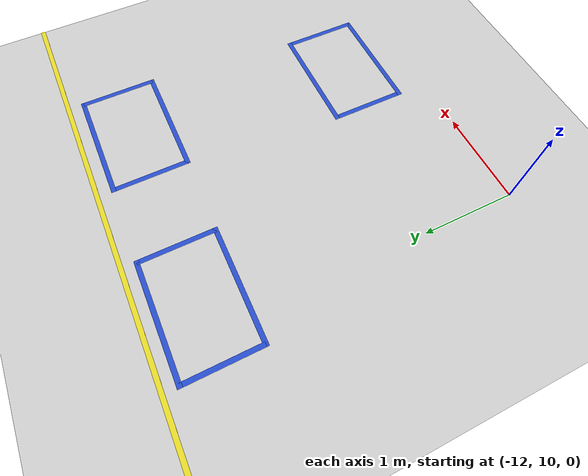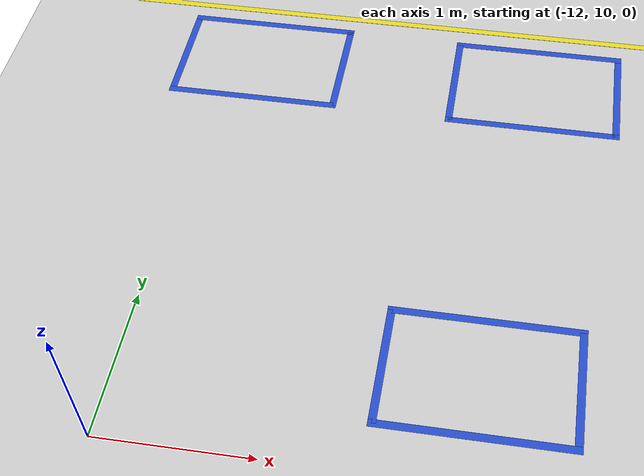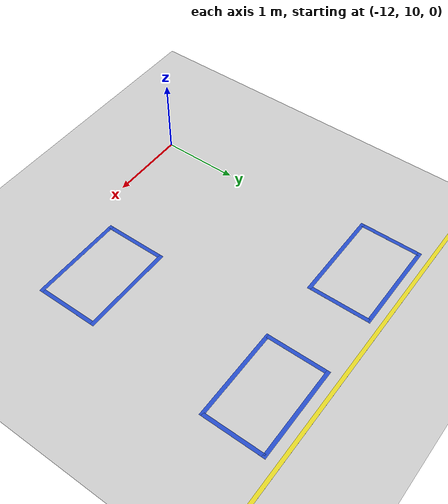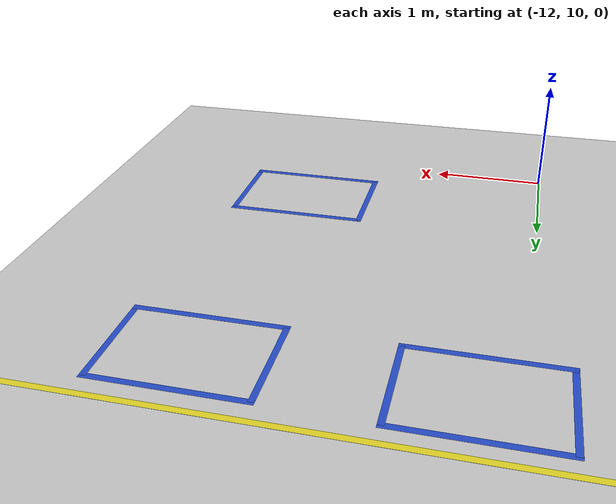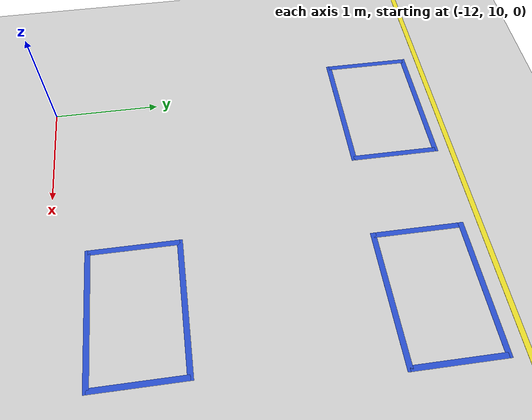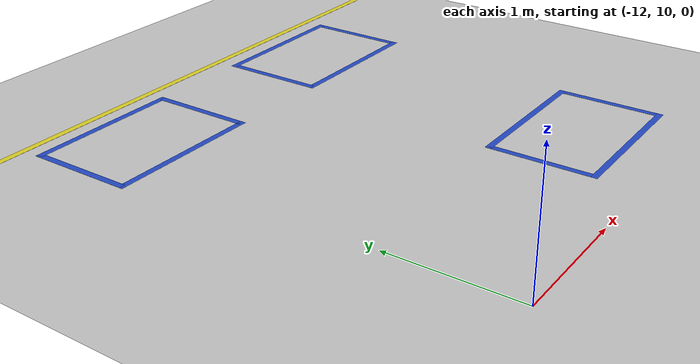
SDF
<sdf version="1.6">
 <world name="default">
  <model name="ground_plane">
   <static>1</static>
   <link name="link">
    <collision name="collision">
     <geometry><plane><normal>0 0 1</normal><size>100 100</size></plane></geometry>
     <surface><friction><ode><mu>100</mu><mu2>50</mu2></ode></friction></surface>
    </collision>
    <visual name="visual">
     <cast_shadows>0</cast_shadows>
     <geometry><plane><normal>0 0 1</normal><size>100 100</size></plane></geometry>
     <material>
      <script><uri>file://media/materials/scripts/gazebo.material</uri><name>Gazebo/Grey</name></script>
     </material>
    </visual>
   </link>
  </model>
  <model name="line20m_0">
   <link name="link_0">
    <inertial>
     <mass>1</mass>
     <inertia>
      <ixx>0.166667</ixx>
      <ixy>0</ixy>
      <ixz>0</ixz>
      <iyy>0.166667</iyy>
      <iyz>0</iyz>
      <izz>0.166667</izz>
     </inertia>
    </inertial>
    <visual name="visual">
     <geometry><box><size>0.05 20 0.001</size></box></geometry>
     <material>
      <lighting>1</lighting>
      <script><uri>file://media/materials/scripts/gazebo.material</uri><name>Gazebo/Yellow</name></script>
     </material>
    </visual>
    <collision name="collision">
     <geometry><box><size>0.05 20 0.001</size></box></geometry>
     <surface>
      <friction>
       <ode><mu>1</mu><mu2>1</mu2><fdir1>0 0 0</fdir1><slip1>0</slip1><slip2>0</slip2></ode>
       <torsional>
        <coefficient>1</coefficient>
        <patch_radius>0</patch_radius>
        <surface_radius>0</surface_radius>
        <use_patch_radius>1</use_patch_radius>
        <ode><slip>0</slip></ode>
       </torsional>
      </friction>
      <bounce><restitution_coefficient>0</restitution_coefficient><threshold>1e+06</threshold></bounce>
      <contact>
       <collide_without_contact>0</collide_without_contact>
       <collide_without_contact_bitmask>1</collide_without_contact_bitmask>
       <collide_bitmask>1</collide_bitmask>
       <ode>
        <soft_cfm>0</soft_cfm>
        <soft_erp>0.2</soft_erp>
        <kp>1e+13</kp>
        <kd>1</kd>
        <max_vel>0.01</max_vel>
        <min_depth>0</min_depth>
       </ode>
       <bullet>
        <split_impulse>1</split_impulse>
        <split_impulse_penetration_threshold>-0.01</split_impulse_penetration_threshold>
        <soft_cfm>0</soft_cfm>
        <soft_erp>0.2</soft_erp>
        <kp>1e+13</kp>
        <kd>1</kd>
       </bullet>
      </contact>
     </surface>
    </collision>
   </link>
   <static>1</static>
   <pose>-10.8441 13.7915 0 0 -0 1.5708</pose>
  </model>
  <model name="waitSpot_3">
   <link name="link_4">
    <inertial>
     <mass>1</mass>
     <inertia>
      <ixx>0.166667</ixx>
      <ixy>0</ixy>
      <ixz>0</ixz>
      <iyy>0.166667</iyy>
      <iyz>0</iyz>
      <izz>0.166667</izz>
     </inertia>
    </inertial>
    <visual name="ModelPreview_8::link_4::visual_3">
     <pose>-0.6 0 0 0 -0 0</pose>
     <geometry><box><size>0.05 0.8 0.0001</size></box></geometry>
     <material>
      <lighting>1</lighting>
      <script><uri>file://media/materials/scripts/gazebo.material</uri><name>Gazebo/Blue</name></script>
     </material>
    </visual>
    <visual name="ModelPreview_8::link_4::visual_1">
     <pose>0 -0.4 0 0 -0 0</pose>
     <geometry><box><size>1.25 0.05 0.0001</size></box></geometry>
     <material>
      <lighting>1</lighting>
      <script><uri>file://media/materials/scripts/gazebo.material</uri><name>Gazebo/Blue</name></script>
     </material>
    </visual>
    <visual name="ModelPreview_8::link_4::visual_2">
     <pose>0.6 0 0 0 -0 0</pose>
     <geometry><box><size>0.05 0.8 0.0001</size></box></geometry>
     <material>
      <lighting>1</lighting>
      <script><uri>file://media/materials/scripts/gazebo.material</uri><name>Gazebo/Blue</name></script>
     </material>
    </visual>
    <visual name="visual">
     <pose>0 0.4 0 0 -0 0</pose>
     <geometry><box><size>1.25 0.05 0.0001</size></box></geometry>
     <material>
      <lighting>1</lighting>
      <script><uri>file://media/materials/scripts/gazebo.material</uri><name>Gazebo/Blue</name></script>
     </material>
    </visual>
    <collision name="collision_2">
     <pose>0.6 0 0 0 -0 0</pose>
     <geometry><box><size>0.05 0.8 0.0001</size></box></geometry>
     <surface>
      <friction>
       <ode><mu>1</mu><mu2>1</mu2><fdir1>0 0 0</fdir1><slip1>0</slip1><slip2>0</slip2></ode>
       <torsional>
        <coefficient>1</coefficient>
        <patch_radius>0</patch_radius>
        <surface_radius>0</surface_radius>
        <use_patch_radius>1</use_patch_radius>
        <ode><slip>0</slip></ode>
       </torsional>
      </friction>
      <bounce><restitution_coefficient>0</restitution_coefficient><threshold>1e+06</threshold></bounce>
      <contact>
       <collide_without_contact>0</collide_without_contact>
       <collide_without_contact_bitmask>1</collide_without_contact_bitmask>
       <collide_bitmask>1</collide_bitmask>
       <ode>
        <soft_cfm>0</soft_cfm>
        <soft_erp>0.2</soft_erp>
        <kp>1e+13</kp>
        <kd>1</kd>
        <max_vel>0.01</max_vel>
        <min_depth>0</min_depth>
       </ode>
       <bullet>
        <split_impulse>1</split_impulse>
        <split_impulse_penetration_threshold>-0.01</split_impulse_penetration_threshold>
        <soft_cfm>0</soft_cfm>
        <soft_erp>0.2</soft_erp>
        <kp>1e+13</kp>
        <kd>1</kd>
       </bullet>
      </contact>
     </surface>
    </collision>
    <collision name="collision">
     <pose>0 0.4 0 0 -0 0</pose>
     <geometry><box><size>1.25 0.05 0.0001</size></box></geometry>
     <surface>
      <friction>
       <ode><mu>1</mu><mu2>1</mu2><fdir1>0 0 0</fdir1><slip1>0</slip1><slip2>0</slip2></ode>
       <torsional>
        <coefficient>1</coefficient>
        <patch_radius>0</patch_radius>
        <surface_radius>0</surface_radius>
        <use_patch_radius>1</use_patch_radius>
        <ode><slip>0</slip></ode>
       </torsional>
      </friction>
      <bounce><restitution_coefficient>0</restitution_coefficient><threshold>1e+06</threshold></bounce>
      <contact>
       <collide_without_contact>0</collide_without_contact>
       <collide_without_contact_bitmask>1</collide_without_contact_bitmask>
       <collide_bitmask>1</collide_bitmask>
       <ode>
        <soft_cfm>0</soft_cfm>
        <soft_erp>0.2</soft_erp>
        <kp>1e+13</kp>
        <kd>1</kd>
        <max_vel>0.01</max_vel>
        <min_depth>0</min_depth>
       </ode>
       <bullet>
        <split_impulse>1</split_impulse>
        <split_impulse_penetration_threshold>-0.01</split_impulse_penetration_threshold>
        <soft_cfm>0</soft_cfm>
        <soft_erp>0.2</soft_erp>
        <kp>1e+13</kp>
        <kd>1</kd>
       </bullet>
      </contact>
     </surface>
    </collision>
    <collision name="collision_1">
     <pose>0 -0.4 0 0 -0 0</pose>
     <geometry><box><size>1.25 0.05 0.0001</size></box></geometry>
     <surface>
      <friction>
       <ode><mu>1</mu><mu2>1</mu2><fdir1>0 0 0</fdir1><slip1>0</slip1><slip2>0</slip2></ode>
       <torsional>
        <coefficient>1</coefficient>
        <patch_radius>0</patch_radius>
        <surface_radius>0</surface_radius>
        <use_patch_radius>1</use_patch_radius>
        <ode><slip>0</slip></ode>
       </torsional>
      </friction>
      <bounce><restitution_coefficient>0</restitution_coefficient><threshold>1e+06</threshold></bounce>
      <contact>
       <collide_without_contact>0</collide_without_contact>
       <collide_without_contact_bitmask>1</collide_without_contact_bitmask>
       <collide_bitmask>1</collide_bitmask>
       <ode>
        <soft_cfm>0</soft_cfm>
        <soft_erp>0.2</soft_erp>
        <kp>1e+13</kp>
        <kd>1</kd>
        <max_vel>0.01</max_vel>
        <min_depth>0</min_depth>
       </ode>
       <bullet>
        <split_impulse>1</split_impulse>
        <split_impulse_penetration_threshold>-0.01</split_impulse_penetration_threshold>
        <soft_cfm>0</soft_cfm>
        <soft_erp>0.2</soft_erp>
        <kp>1e+13</kp>
        <kd>1</kd>
       </bullet>
      </contact>
     </surface>
    </collision>
    <collision name="collision_3">
     <pose>-0.6 0 0 0 -0 0</pose>
     <geometry><box><size>0.05 0.8 0.0001</size></box></geometry>
     <surface>
      <friction>
       <ode><mu>1</mu><mu2>1</mu2><fdir1>0 0 0</fdir1><slip1>0</slip1><slip2>0</slip2></ode>
       <torsional>
        <coefficient>1</coefficient>
        <patch_radius>0</patch_radius>
        <surface_radius>0</surface_radius>
        <use_patch_radius>1</use_patch_radius>
        <ode><slip>0</slip></ode>
       </torsional>
      </friction>
      <bounce><restitution_coefficient>0</restitution_coefficient><threshold>1e+06</threshold></bounce>
      <contact>
       <collide_without_contact>0</collide_without_contact>
       <collide_without_contact_bitmask>1</collide_without_contact_bitmask>
       <collide_bitmask>1</collide_bitmask>
       <ode>
        <soft_cfm>0</soft_cfm>
        <soft_erp>0.2</soft_erp>
        <kp>1e+13</kp>
        <kd>1</kd>
        <max_vel>0.01</max_vel>
        <min_depth>0</min_depth>
       </ode>
       <bullet>
        <split_impulse>1</split_impulse>
        <split_impulse_penetration_threshold>-0.01</split_impulse_penetration_threshold>
        <soft_cfm>0</soft_cfm>
        <soft_erp>0.2</soft_erp>
        <kp>1e+13</kp>
        <kd>1</kd>
       </bullet>
      </contact>
     </surface>
    </collision>
   </link>
   <static>1</static>
   <pose>-11.6907 13.2366 0 0 -0 0</pose>
  </model>
  <model name="waitSpot_4">
   <link name="link_4">
    <inertial>
     <mass>1</mass>
     <inertia>
      <ixx>0.166667</ixx>
      <ixy>0</ixy>
      <ixz>0</ixz>
      <iyy>0.166667</iyy>
      <iyz>0</iyz>
      <izz>0.166667</izz>
     </inertia>
    </inertial>
    <visual name="ModelPreview_8::link_4::visual_3">
     <pose>-0.6 0 0 0 -0 0</pose>
     <geometry><box><size>0.05 0.8 0.0001</size></box></geometry>
     <material>
      <lighting>1</lighting>
      <script><uri>file://media/materials/scripts/gazebo.material</uri><name>Gazebo/Blue</name></script>
     </material>
    </visual>
    <visual name="ModelPreview_8::link_4::visual_1">
     <pose>0 -0.4 0 0 -0 0</pose>
     <geometry><box><size>1.25 0.05 0.0001</size></box></geometry>
     <material>
      <lighting>1</lighting>
      <script><uri>file://media/materials/scripts/gazebo.material</uri><name>Gazebo/Blue</name></script>
     </material>
    </visual>
    <visual name="ModelPreview_8::link_4::visual_2">
     <pose>0.6 0 0 0 -0 0</pose>
     <geometry><box><size>0.05 0.8 0.0001</size></box></geometry>
     <material>
      <lighting>1</lighting>
      <script><uri>file://media/materials/scripts/gazebo.material</uri><name>Gazebo/Blue</name></script>
     </material>
    </visual>
    <visual name="visual">
     <pose>0 0.4 0 0 -0 0</pose>
     <geometry><box><size>1.25 0.05 0.0001</size></box></geometry>
     <material>
      <lighting>1</lighting>
      <script><uri>file://media/materials/scripts/gazebo.material</uri><name>Gazebo/Blue</name></script>
     </material>
    </visual>
    <collision name="collision_2">
     <pose>0.6 0 0 0 -0 0</pose>
     <geometry><box><size>0.05 0.8 0.0001</size></box></geometry>
     <surface>
      <friction>
       <ode><mu>1</mu><mu2>1</mu2><fdir1>0 0 0</fdir1><slip1>0</slip1><slip2>0</slip2></ode>
       <torsional>
        <coefficient>1</coefficient>
        <patch_radius>0</patch_radius>
        <surface_radius>0</surface_radius>
        <use_patch_radius>1</use_patch_radius>
        <ode><slip>0</slip></ode>
       </torsional>
      </friction>
      <bounce><restitution_coefficient>0</restitution_coefficient><threshold>1e+06</threshold></bounce>
      <contact>
       <collide_without_contact>0</collide_without_contact>
       <collide_without_contact_bitmask>1</collide_without_contact_bitmask>
       <collide_bitmask>1</collide_bitmask>
       <ode>
        <soft_cfm>0</soft_cfm>
        <soft_erp>0.2</soft_erp>
        <kp>1e+13</kp>
        <kd>1</kd>
        <max_vel>0.01</max_vel>
        <min_depth>0</min_depth>
       </ode>
       <bullet>
        <split_impulse>1</split_impulse>
        <split_impulse_penetration_threshold>-0.01</split_impulse_penetration_threshold>
        <soft_cfm>0</soft_cfm>
        <soft_erp>0.2</soft_erp>
        <kp>1e+13</kp>
        <kd>1</kd>
       </bullet>
      </contact>
     </surface>
    </collision>
    <collision name="collision">
     <pose>0 0.4 0 0 -0 0</pose>
     <geometry><box><size>1.25 0.05 0.0001</size></box></geometry>
     <surface>
      <friction>
       <ode><mu>1</mu><mu2>1</mu2><fdir1>0 0 0</fdir1><slip1>0</slip1><slip2>0</slip2></ode>
       <torsional>
        <coefficient>1</coefficient>
        <patch_radius>0</patch_radius>
        <surface_radius>0</surface_radius>
        <use_patch_radius>1</use_patch_radius>
        <ode><slip>0</slip></ode>
       </torsional>
      </friction>
      <bounce><restitution_coefficient>0</restitution_coefficient><threshold>1e+06</threshold></bounce>
      <contact>
       <collide_without_contact>0</collide_without_contact>
       <collide_without_contact_bitmask>1</collide_without_contact_bitmask>
       <collide_bitmask>1</collide_bitmask>
       <ode>
        <soft_cfm>0</soft_cfm>
        <soft_erp>0.2</soft_erp>
        <kp>1e+13</kp>
        <kd>1</kd>
        <max_vel>0.01</max_vel>
        <min_depth>0</min_depth>
       </ode>
       <bullet>
        <split_impulse>1</split_impulse>
        <split_impulse_penetration_threshold>-0.01</split_impulse_penetration_threshold>
        <soft_cfm>0</soft_cfm>
        <soft_erp>0.2</soft_erp>
        <kp>1e+13</kp>
        <kd>1</kd>
       </bullet>
      </contact>
     </surface>
    </collision>
    <collision name="collision_1">
     <pose>0 -0.4 0 0 -0 0</pose>
     <geometry><box><size>1.25 0.05 0.0001</size></box></geometry>
     <surface>
      <friction>
       <ode><mu>1</mu><mu2>1</mu2><fdir1>0 0 0</fdir1><slip1>0</slip1><slip2>0</slip2></ode>
       <torsional>
        <coefficient>1</coefficient>
        <patch_radius>0</patch_radius>
        <surface_radius>0</surface_radius>
        <use_patch_radius>1</use_patch_radius>
        <ode><slip>0</slip></ode>
       </torsional>
      </friction>
      <bounce><restitution_coefficient>0</restitution_coefficient><threshold>1e+06</threshold></bounce>
      <contact>
       <collide_without_contact>0</collide_without_contact>
       <collide_without_contact_bitmask>1</collide_without_contact_bitmask>
       <collide_bitmask>1</collide_bitmask>
       <ode>
        <soft_cfm>0</soft_cfm>
        <soft_erp>0.2</soft_erp>
        <kp>1e+13</kp>
        <kd>1</kd>
        <max_vel>0.01</max_vel>
        <min_depth>0</min_depth>
       </ode>
       <bullet>
        <split_impulse>1</split_impulse>
        <split_impulse_penetration_threshold>-0.01</split_impulse_penetration_threshold>
        <soft_cfm>0</soft_cfm>
        <soft_erp>0.2</soft_erp>
        <kp>1e+13</kp>
        <kd>1</kd>
       </bullet>
      </contact>
     </surface>
    </collision>
    <collision name="collision_3">
     <pose>-0.6 0 0 0 -0 0</pose>
     <geometry><box><size>0.05 0.8 0.0001</size></box></geometry>
     <surface>
      <friction>
       <ode><mu>1</mu><mu2>1</mu2><fdir1>0 0 0</fdir1><slip1>0</slip1><slip2>0</slip2></ode>
       <torsional>
        <coefficient>1</coefficient>
        <patch_radius>0</patch_radius>
        <surface_radius>0</surface_radius>
        <use_patch_radius>1</use_patch_radius>
        <ode><slip>0</slip></ode>
       </torsional>
      </friction>
      <bounce><restitution_coefficient>0</restitution_coefficient><threshold>1e+06</threshold></bounce>
      <contact>
       <collide_without_contact>0</collide_without_contact>
       <collide_without_contact_bitmask>1</collide_without_contact_bitmask>
       <collide_bitmask>1</collide_bitmask>
       <ode>
        <soft_cfm>0</soft_cfm>
        <soft_erp>0.2</soft_erp>
        <kp>1e+13</kp>
        <kd>1</kd>
        <max_vel>0.01</max_vel>
        <min_depth>0</min_depth>
       </ode>
       <bullet>
        <split_impulse>1</split_impulse>
        <split_impulse_penetration_threshold>-0.01</split_impulse_penetration_threshold>
        <soft_cfm>0</soft_cfm>
        <soft_erp>0.2</soft_erp>
        <kp>1e+13</kp>
        <kd>1</kd>
       </bullet>
      </contact>
     </surface>
    </collision>
   </link>
   <static>1</static>
   <pose>-9.63708 13.2192 0 0 -0 0</pose>
  </model>
  <model name="waitSpot_11">
   <link name="link_4">
    <inertial>
     <mass>1</mass>
     <inertia>
      <ixx>0.166667</ixx>
      <ixy>0</ixy>
      <ixz>0</ixz>
      <iyy>0.166667</iyy>
      <iyz>0</iyz>
      <izz>0.166667</izz>
     </inertia>
    </inertial>
    <visual name="ModelPreview_8::link_4::visual_3">
     <pose>-0.6 0 0 0 -0 0</pose>
     <geometry><box><size>0.05 0.8 0.0001</size></box></geometry>
     <material>
      <lighting>1</lighting>
      <script><uri>file://media/materials/scripts/gazebo.material</uri><name>Gazebo/Blue</name></script>
     </material>
    </visual>
    <visual name="ModelPreview_8::link_4::visual_1">
     <pose>0 -0.4 0 0 -0 0</pose>
     <geometry><box><size>1.25 0.05 0.0001</size></box></geometry>
     <material>
      <lighting>1</lighting>
      <script><uri>file://media/materials/scripts/gazebo.material</uri><name>Gazebo/Blue</name></script>
     </material>
    </visual>
    <visual name="ModelPreview_8::link_4::visual_2">
     <pose>0.6 0 0 0 -0 0</pose>
     <geometry><box><size>0.05 0.8 0.0001</size></box></geometry>
     <material>
      <lighting>1</lighting>
      <script><uri>file://media/materials/scripts/gazebo.material</uri><name>Gazebo/Blue</name></script>
     </material>
    </visual>
    <visual name="visual">
     <pose>0 0.4 0 0 -0 0</pose>
     <geometry><box><size>1.25 0.05 0.0001</size></box></geometry>
     <material>
      <lighting>1</lighting>
      <script><uri>file://media/materials/scripts/gazebo.material</uri><name>Gazebo/Blue</name></script>
     </material>
    </visual>
    <collision name="collision_2">
     <pose>0.6 0 0 0 -0 0</pose>
     <geometry><box><size>0.05 0.8 0.0001</size></box></geometry>
     <surface>
      <friction>
       <ode><mu>1</mu><mu2>1</mu2><fdir1>0 0 0</fdir1><slip1>0</slip1><slip2>0</slip2></ode>
       <torsional>
        <coefficient>1</coefficient>
        <patch_radius>0</patch_radius>
        <surface_radius>0</surface_radius>
        <use_patch_radius>1</use_patch_radius>
        <ode><slip>0</slip></ode>
       </torsional>
      </friction>
      <bounce><restitution_coefficient>0</restitution_coefficient><threshold>1e+06</threshold></bounce>
      <contact>
       <collide_without_contact>0</collide_without_contact>
       <collide_without_contact_bitmask>1</collide_without_contact_bitmask>
       <collide_bitmask>1</collide_bitmask>
       <ode>
        <soft_cfm>0</soft_cfm>
        <soft_erp>0.2</soft_erp>
        <kp>1e+13</kp>
        <kd>1</kd>
        <max_vel>0.01</max_vel>
        <min_depth>0</min_depth>
       </ode>
       <bullet>
        <split_impulse>1</split_impulse>
        <split_impulse_penetration_threshold>-0.01</split_impulse_penetration_threshold>
        <soft_cfm>0</soft_cfm>
        <soft_erp>0.2</soft_erp>
        <kp>1e+13</kp>
        <kd>1</kd>
       </bullet>
      </contact>
     </surface>
    </collision>
    <collision name="collision">
     <pose>0 0.4 0 0 -0 0</pose>
     <geometry><box><size>1.25 0.05 0.0001</size></box></geometry>
     <surface>
      <friction>
       <ode><mu>1</mu><mu2>1</mu2><fdir1>0 0 0</fdir1><slip1>0</slip1><slip2>0</slip2></ode>
       <torsional>
        <coefficient>1</coefficient>
        <patch_radius>0</patch_radius>
        <surface_radius>0</surface_radius>
        <use_patch_radius>1</use_patch_radius>
        <ode><slip>0</slip></ode>
       </torsional>
      </friction>
      <bounce><restitution_coefficient>0</restitution_coefficient><threshold>1e+06</threshold></bounce>
      <contact>
       <collide_without_contact>0</collide_without_contact>
       <collide_without_contact_bitmask>1</collide_without_contact_bitmask>
       <collide_bitmask>1</collide_bitmask>
       <ode>
        <soft_cfm>0</soft_cfm>
        <soft_erp>0.2</soft_erp>
        <kp>1e+13</kp>
        <kd>1</kd>
        <max_vel>0.01</max_vel>
        <min_depth>0</min_depth>
       </ode>
       <bullet>
        <split_impulse>1</split_impulse>
        <split_impulse_penetration_threshold>-0.01</split_impulse_penetration_threshold>
        <soft_cfm>0</soft_cfm>
        <soft_erp>0.2</soft_erp>
        <kp>1e+13</kp>
        <kd>1</kd>
       </bullet>
      </contact>
     </surface>
    </collision>
    <collision name="collision_1">
     <pose>0 -0.4 0 0 -0 0</pose>
     <geometry><box><size>1.25 0.05 0.0001</size></box></geometry>
     <surface>
      <friction>
       <ode><mu>1</mu><mu2>1</mu2><fdir1>0 0 0</fdir1><slip1>0</slip1><slip2>0</slip2></ode>
       <torsional>
        <coefficient>1</coefficient>
        <patch_radius>0</patch_radius>
        <surface_radius>0</surface_radius>
        <use_patch_radius>1</use_patch_radius>
        <ode><slip>0</slip></ode>
       </torsional>
      </friction>
      <bounce><restitution_coefficient>0</restitution_coefficient><threshold>1e+06</threshold></bounce>
      <contact>
       <collide_without_contact>0</collide_without_contact>
       <collide_without_contact_bitmask>1</collide_without_contact_bitmask>
       <collide_bitmask>1</collide_bitmask>
       <ode>
        <soft_cfm>0</soft_cfm>
        <soft_erp>0.2</soft_erp>
        <kp>1e+13</kp>
        <kd>1</kd>
        <max_vel>0.01</max_vel>
        <min_depth>0</min_depth>
       </ode>
       <bullet>
        <split_impulse>1</split_impulse>
        <split_impulse_penetration_threshold>-0.01</split_impulse_penetration_threshold>
        <soft_cfm>0</soft_cfm>
        <soft_erp>0.2</soft_erp>
        <kp>1e+13</kp>
        <kd>1</kd>
       </bullet>
      </contact>
     </surface>
    </collision>
    <collision name="collision_3">
     <pose>-0.6 0 0 0 -0 0</pose>
     <geometry><box><size>0.05 0.8 0.0001</size></box></geometry>
     <surface>
      <friction>
       <ode><mu>1</mu><mu2>1</mu2><fdir1>0 0 0</fdir1><slip1>0</slip1><slip2>0</slip2></ode>
       <torsional>
        <coefficient>1</coefficient>
        <patch_radius>0</patch_radius>
        <surface_radius>0</surface_radius>
        <use_patch_radius>1</use_patch_radius>
        <ode><slip>0</slip></ode>
       </torsional>
      </friction>
      <bounce><restitution_coefficient>0</restitution_coefficient><threshold>1e+06</threshold></bounce>
      <contact>
       <collide_without_contact>0</collide_without_contact>
       <collide_without_contact_bitmask>1</collide_without_contact_bitmask>
       <collide_bitmask>1</collide_bitmask>
       <ode>
        <soft_cfm>0</soft_cfm>
        <soft_erp>0.2</soft_erp>
        <kp>1e+13</kp>
        <kd>1</kd>
        <max_vel>0.01</max_vel>
        <min_depth>0</min_depth>
       </ode>
       <bullet>
        <split_impulse>1</split_impulse>
        <split_impulse_penetration_threshold>-0.01</split_impulse_penetration_threshold>
        <soft_cfm>0</soft_cfm>
        <soft_erp>0.2</soft_erp>
        <kp>1e+13</kp>
        <kd>1</kd>
       </bullet>
      </contact>
     </surface>
    </collision>
   </link>
   <static>1</static>
   <pose>-9.80008 10.7247 0 0 -0 0</pose>
  </model>
 </world>
</sdf>
